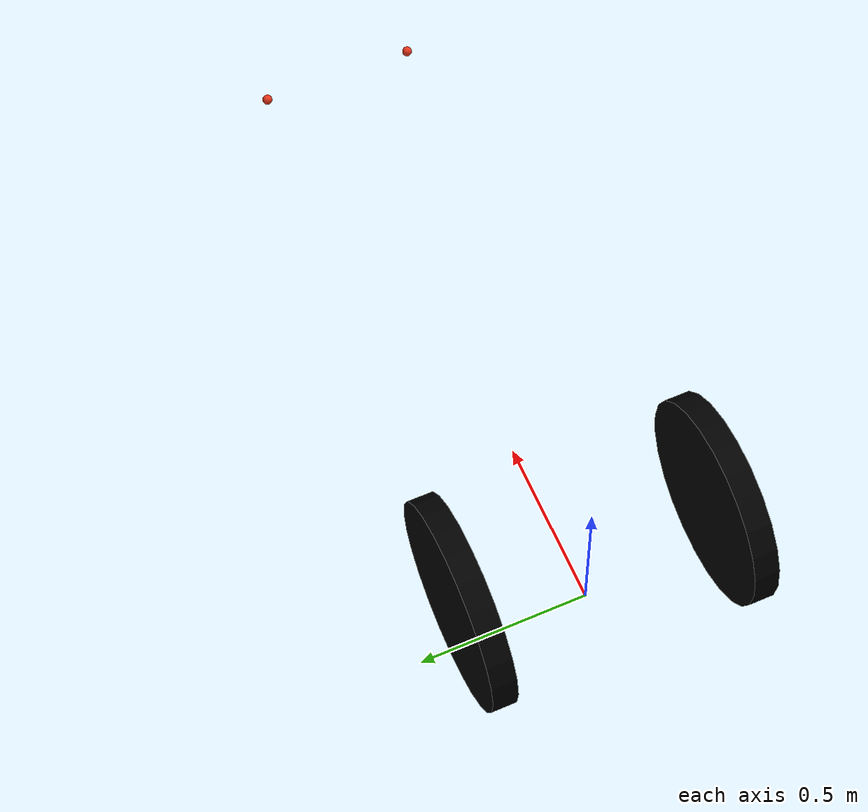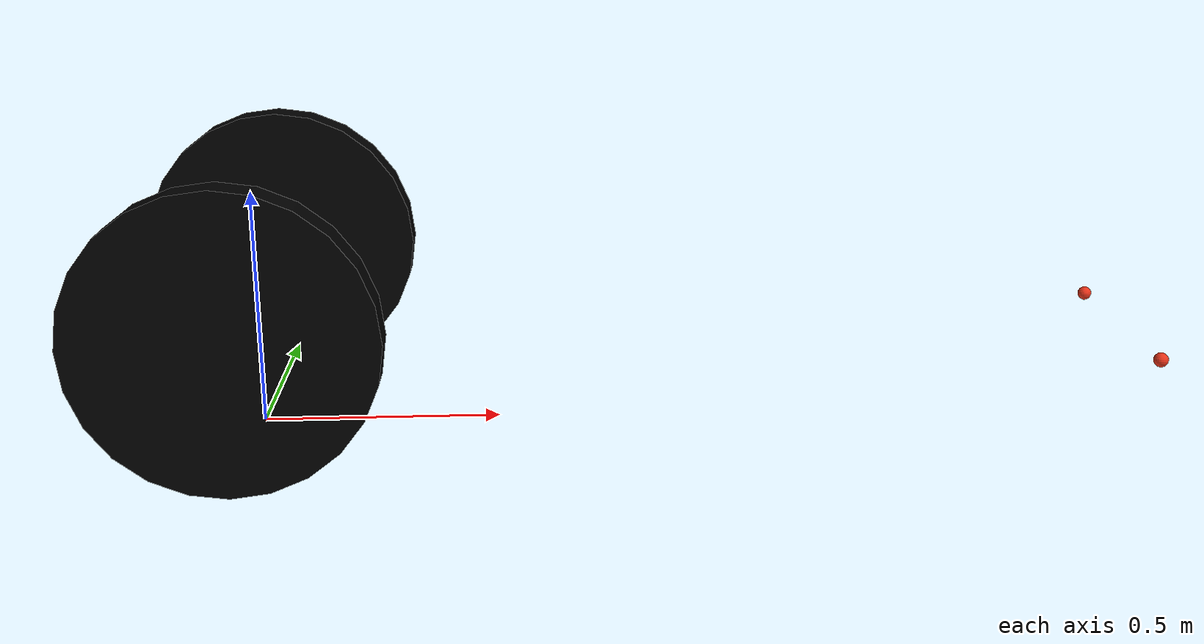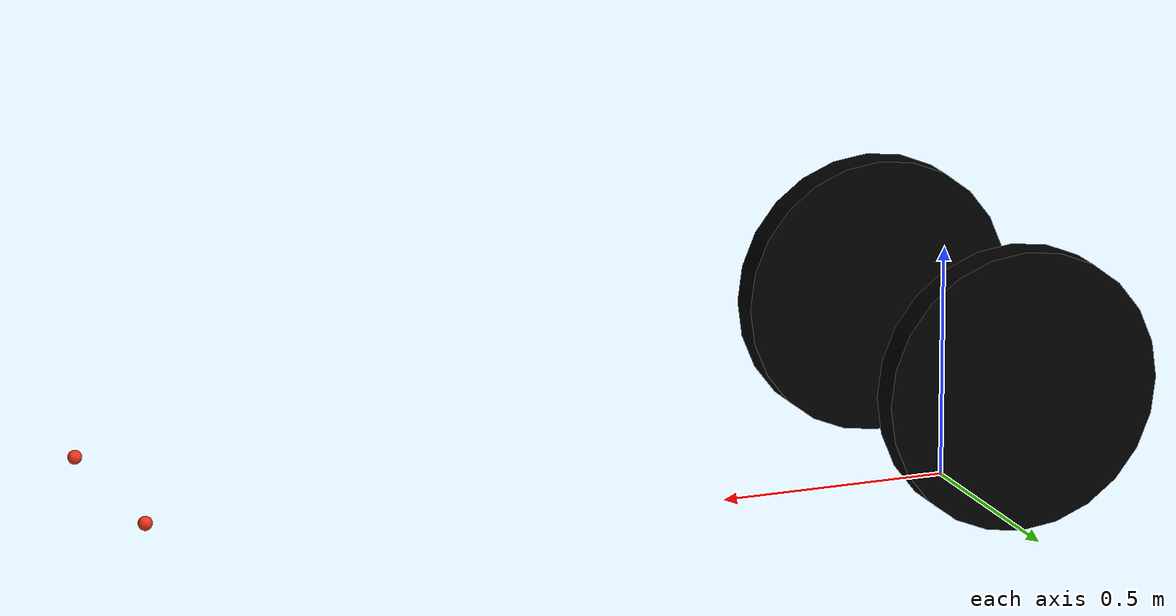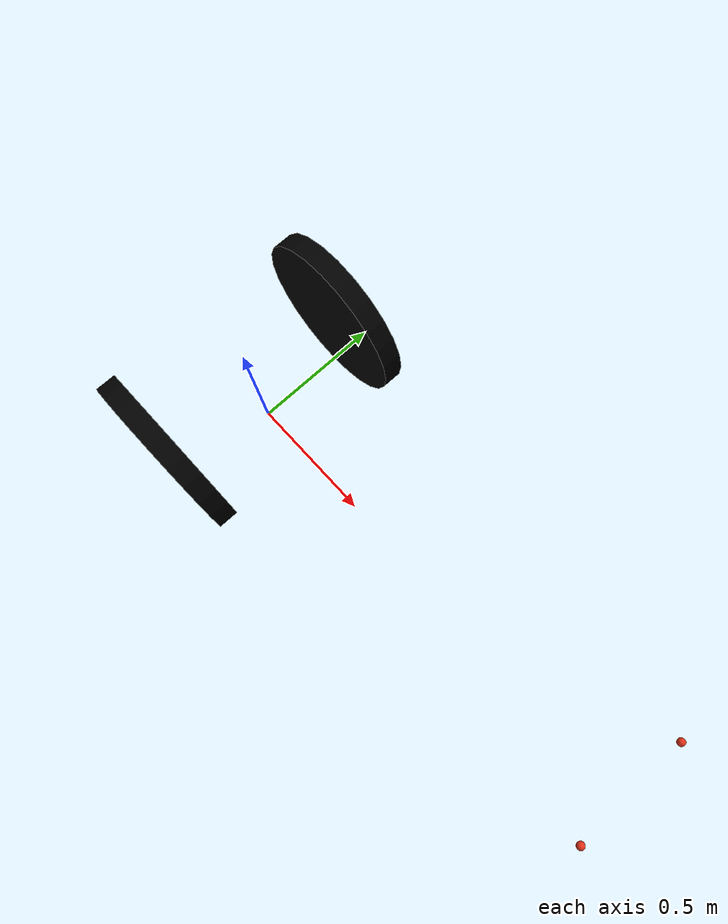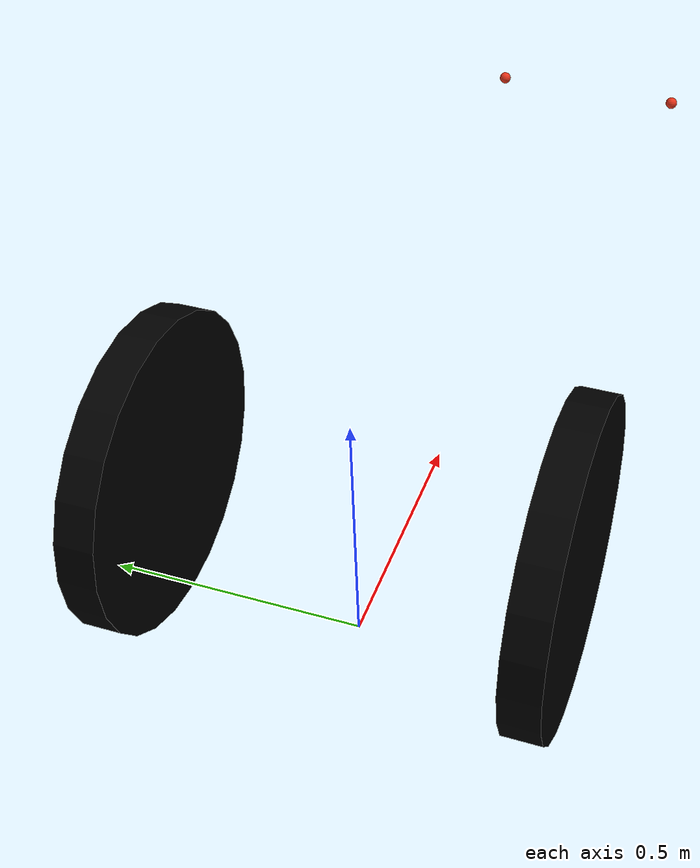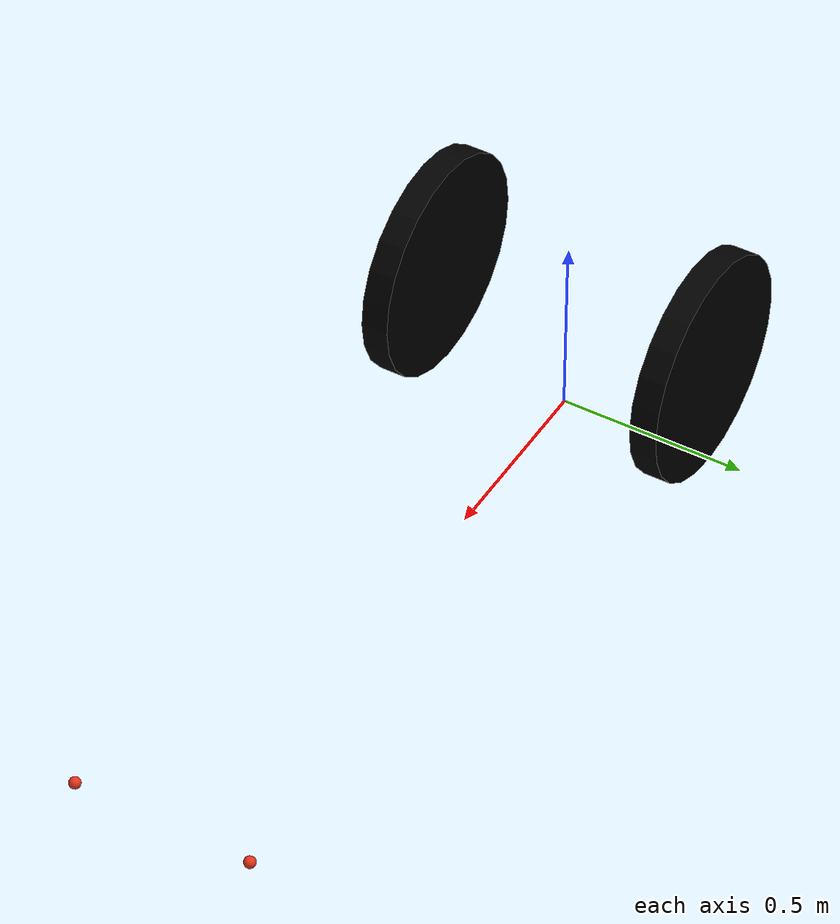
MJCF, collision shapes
<?xml version="1.0" encoding="UTF-8"?>
<mujoco model="rickshaw">
  <compiler angle="radian" autolimits="true" />
  <option gravity="0 0 -9.81" />

  <asset>
    <mesh name="body_visual" file="assets/body.stl" scale="0.0001 0.0001 0.0001" />
    <mesh name="left_wheel_visual" file="assets/right_wheel.stl" scale="0.0001 0.00008 0.00008" />
    <mesh name="right_wheel_visual" file="assets/left_wheel.stl" scale="0.0001 0.00008 0.00008" />
    <material name="body_dark_red" rgba="0.18 0.004 0.008 1" />
    <material name="wheel_dark" rgba="0.05 0.05 0.05 1" />
  </asset>

  <worldbody>
    <body name="base_link">
      <freejoint name="floating_base_joint" />
      <inertial pos="0.1 0 0.6276898532066667" mass="30" fullinertia="6.16 18.5 14.86 0 0 0" />
      <geom name="body_visual" type="mesh" mesh="body_visual"
        pos="1.94034 -0.414504 -0.074999" euler="0 0 1.57079632679"
        material="body_dark_red" contype="0" conaffinity="0" />

      <site name="left_tow_hitch" pos="1.85049373 0.235 0.18164719" size="0.015" rgba="0.9 0.2 0.1 1" />
      <site name="right_tow_hitch" pos="1.85049373 -0.235 0.18164719" size="0.015" rgba="0.9 0.2 0.1 1" />

      <body name="left_wheel_link" pos="0 0.378231 0.3">
        <joint name="left_wheel_joint" type="hinge" axis="0 1 0" damping="0.02" />
        <inertial pos="0 0 0" mass="2" diaginertia="0.04587720205066667 0.09 0.04587720205066667" />
        <geom name="left_wheel_visual" type="mesh" mesh="left_wheel_visual"
          pos="1.552272 -0.792735 -0.3" euler="0 0 1.57079632679"
          material="wheel_dark" contype="0" conaffinity="0" />
        <geom name="left_wheel_collision" type="cylinder" size="0.3 0.036274"
          quat="0.7071067811865476 0.7071067811865476 0 0"
          friction="1.0 0.01 0.001" condim="6" group="3" rgba="0 0 0 0" />
      </body>

      <body name="right_wheel_link" pos="0 -0.378231 0.3">
        <joint name="right_wheel_joint" type="hinge" axis="0 1 0" damping="0.02" />
        <inertial pos="0 0 0" mass="2" diaginertia="0.04587720205066667 0.09 0.04587720205066667" />
        <geom name="right_wheel_visual" type="mesh" mesh="right_wheel_visual"
          pos="1.552272 -0.036274 -0.3" euler="0 0 1.57079632679"
          material="wheel_dark" contype="0" conaffinity="0" />
        <geom name="right_wheel_collision" type="cylinder" size="0.3 0.036274"
          quat="0.7071067811865476 0.7071067811865476 0 0"
          friction="1.0 0.01 0.001" condim="6" group="3" rgba="0 0 0 0" />
      </body>
    </body>
  </worldbody>
</mujoco>
